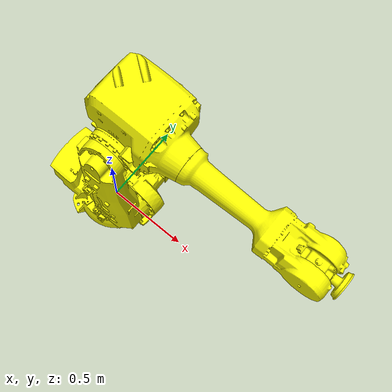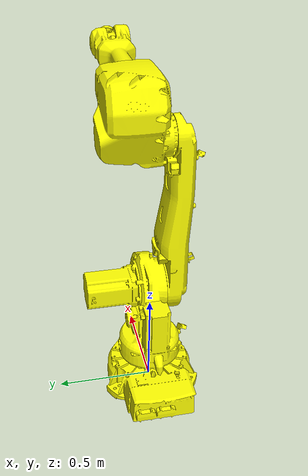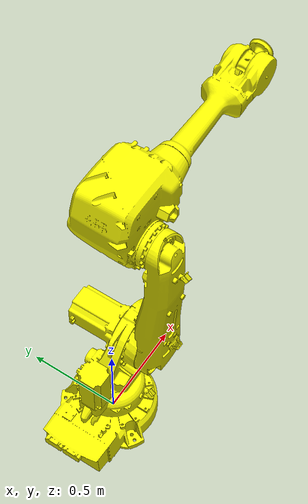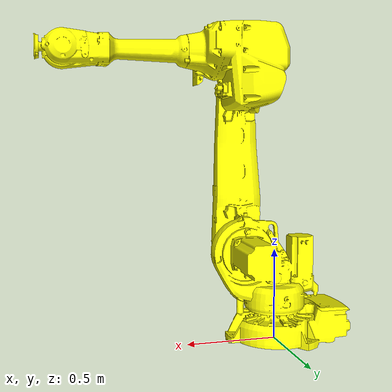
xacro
<?xml version="1.0"?>
<robot xmlns:xacro="http://www.ros.org/wiki/xacro"
       name="preview_irb4600_60_205">
  <xacro:arg name="tf_prefix" default=""/>

  <!-- Define world ONLY in preview/top-level -->
  <link name="world"/>

  <!-- Instantiate -->
  <xacro:include filename="$(find abb_irb4600_support)/urdf/irb4600_60_205_macro.urdf.xacro"/>
  <xacro:abb_irb4600_60_205 prefix="$(arg tf_prefix)"/>

  <!-- Attach to world -->
  <joint name="mount_to_world" type="fixed">
    <parent link="world"/>
    <child link="$(arg tf_prefix)base_link"/>
    <origin xyz="0 0 0" rpy="0 0 0"/>
  </joint>

</robot>

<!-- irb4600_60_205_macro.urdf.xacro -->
<robot xmlns:xacro="http://ros.org/wiki/xacro">
  <xacro:macro name="abb_irb4600_60_205"
    params="prefix:='' revolute_damping:=0 revolute_friction:=0 include_collision:=true">
    <!-- link list -->
    <link name="${prefix}base_link">
      <xacro:if value="${include_collision}">
        <collision name="collision">
          <geometry>
            <mesh filename="package://abb_irb4600_support/meshes/irb4600/collision/base_link.stl" />
          </geometry>
        </collision>
      </xacro:if>
      <visual name="visual">
        <geometry>
          <mesh filename="package://abb_irb4600_support/meshes/irb4600/visual_obj/base_link.obj" />
        </geometry>
        <material name="yellow">
          <color rgba="1 1 0 1" />
        </material>
      </visual>
      <!-- The following are estimates only, as computed using total robot mass of 445kg distributed
      according to link volumes. -->
      <inertial>
        <mass value="81.828765" />
        <inertia ixx="1.1415" ixy="0.0105902" ixz="0.156701"
          iyy="2.31965" iyz="0.00032"
          izz="3.13136" />
        <origin xyz="-0.0914 0.000381 0.08247" rpy="0 0 0" />
      </inertial>
    </link>
    <link name="${prefix}link_1">
      <xacro:if value="${include_collision}">
        <collision name="collision">
          <geometry>
            <mesh filename="package://abb_irb4600_support/meshes/irb4600/collision/link_1.stl" />
          </geometry>
        </collision>
      </xacro:if>
      <visual name="visual">
        <geometry>
          <mesh filename="package://abb_irb4600_support/meshes/irb4600/visual_obj/link_1.obj" />
        </geometry>
        <material name="yellow" />
      </visual>
      <!-- The following are estimates only, as computed using total robot mass of 445kg distributed
      according to link volumes. -->
      <inertial>
        <mass value="114.303365" />
        <inertia ixx="2.99197" ixy="-0.262121" ixz="0.0804318"
          iyy="3.89993" iyz="-0.279368"
          izz="3.12186" />
        <origin xyz="0.076986 0.024762 -0.0947" rpy="0 0 0" />
      </inertial>
    </link>
    <link name="${prefix}link_2">
      <xacro:if value="${include_collision}">
        <collision name="collision">
          <geometry>
            <mesh filename="package://abb_irb4600_support/meshes/irb4600_60_205/collision/link_2.stl" />
          </geometry>
        </collision>
      </xacro:if>
      <visual name="visual">
        <geometry>
          <mesh filename="package://abb_irb4600_support/meshes/irb4600_60_205/visual_obj/link_2.obj" />
        </geometry>
        <material name="yellow" />
      </visual>
      <!-- The following are estimates only, as computed using total robot mass of 445kg distributed
      according to link volumes. -->
      <inertial>
        <mass value="75.83976" />
        <inertia ixx="5.85548" ixy="-0.00008" ixz="0.000798"
          iyy="6.06764" iyz="0.198884"
          izz="0.434182" />
        <origin xyz="0 -0.17055 0.396832" rpy="0 0 0" />
      </inertial>

    </link>
    <link name="${prefix}link_3">
      <xacro:if value="${include_collision}">
        <collision name="collision">
          <geometry>
            <mesh filename="package://abb_irb4600_support/meshes/irb4600_60_205/collision/link_3.stl" />
          </geometry>
        </collision>
      </xacro:if>
      <visual name="visual">
        <geometry>
          <mesh filename="package://abb_irb4600_support/meshes/irb4600_60_205/visual_obj/link_3.obj" />
        </geometry>
        <material name="yellow" />
      </visual>
      <!-- The following are estimates only, as computed using total robot mass of 445kg distributed
      according to link volumes. -->
      <inertial>
        <mass value="128.2082" />
        <inertia ixx="3.06222" ixy="0.199317" ixz="-0.309802"
          iyy="3.76188" iyz="0.0384368"
          izz="3.09117" />
        <origin xyz="0.040168 0.0493055 0.119626" rpy="0 0 0" />
      </inertial>

    </link>
    <link name="${prefix}link_4">
      <xacro:if value="${include_collision}">
        <collision name="collision">
          <geometry>
            <mesh filename="package://abb_irb4600_support/meshes/irb4600_60_205/collision/link_4.stl" />
          </geometry>
        </collision>
      </xacro:if>
      <visual name="visual">
        <geometry>
          <mesh filename="package://abb_irb4600_support/meshes/irb4600_60_205/visual_obj/link_4.obj" />
        </geometry>
        <material name="yellow" />
      </visual>
      <!-- The following are estimates only, as computed using total robot mass of 445kg distributed
      according to link volumes. -->
      <inertial>
        <mass value="30.039968" />
        <inertia ixx="0.143877" ixy="0.0152815" ixz="0.00617976"
          iyy="1.24666" iyz="0.00008"
          izz="1.29441" />
        <origin xyz="0.733488 -0.0019699 -0.002854" rpy="0 0 0" />
      </inertial>

    </link>
    <link name="${prefix}link_5">
      <xacro:if value="${include_collision}">
        <collision name="collision">
          <geometry>
            <mesh filename="package://abb_irb4600_support/meshes/irb4600_60_205/collision/link_5.stl" />
          </geometry>
        </collision>
      </xacro:if>
      <visual name="visual">
        <geometry>
          <mesh filename="package://abb_irb4600_support/meshes/irb4600_60_205/visual_obj/link_5.obj" />
        </geometry>
        <material name="yellow" />
      </visual>
      <!-- The following are estimates only, as computed using total robot mass of 445kg distributed
      according to link volumes. -->
      <inertial>
        <mass value="4.06033" />
        <inertia ixx="0.00817067" ixy="0.0" ixz="-0.00005"
          iyy="0.00847828" iyz="0.00001"
          izz="0.009" />
        <origin xyz="-0.001046 -0.003447 0.000404" rpy="0 0 0" />
      </inertial>

    </link>
    <link name="${prefix}link_6">
      <xacro:if value="${include_collision}">
        <collision name="collision">
          <geometry>
            <mesh filename="package://abb_irb4600_support/meshes/irb4600_60_205/collision/link_6.stl" />
          </geometry>
        </collision>
      </xacro:if>
      <visual name="visual">
        <geometry>
          <mesh filename="package://abb_irb4600_support/meshes/irb4600_60_205/visual_obj/link_6.obj" />
        </geometry>
        <material name="yellow" />
      </visual>
      <!-- The following are estimates only, as computed using total robot mass of 445kg distributed
      according to link volumes. -->
      <inertial>
        <mass value="0.71955" />
        <inertia ixx="0.00101673" ixy="0.0" ixz="0.0"
          iyy="0.000771006" iyz="0.0"
          izz="0.000776247" />
        <origin xyz="-0.0216378 -0.000286 0.000136" rpy="0 0 0" />
      </inertial>
    </link>
    <!-- end of link list -->

    <!-- joint list -->
    <joint type="revolute" name="${prefix}joint_1">
      <origin xyz="0 0 0.495" rpy="0 0 0" />
      <axis xyz="0 0 1" />
      <parent link="${prefix}base_link" />
      <child link="${prefix}link_1" />
      <limit effort="2000" lower="-3.141" upper="3.141" velocity="3.054" />
      <dynamics damping="${revolute_damping}" friction="${revolute_friction}" />
    </joint>
    <joint type="revolute" name="${prefix}joint_2">
      <origin xyz="0.175 0 0" rpy="0 0 0" />
      <axis xyz="0 1 0" />
      <parent link="${prefix}link_1" />
      <child link="${prefix}link_2" />
      <limit effort="5000" lower="-1.570" upper="2.617" velocity="3.054" />
      <dynamics damping="${revolute_damping}" friction="${revolute_friction}" />
    </joint>
    <joint type="revolute" name="${prefix}joint_3">
      <origin xyz="0 0 0.9" rpy="0 0 0" />
      <axis xyz="0 1 0" />
      <parent link="${prefix}link_2" />
      <child link="${prefix}link_3" />
      <limit effort="4000" lower="-3.141" upper="1.308" velocity="3.054" />
      <dynamics damping="${revolute_damping}" friction="${revolute_friction}" />
    </joint>
    <joint type="revolute" name="${prefix}joint_4">
      <origin xyz="0 0 0.175" rpy="0 0 0" />
      <axis xyz="1 0 0" />
      <parent link="${prefix}link_3" />
      <child link="${prefix}link_4" />
      <limit effort="1000" lower="-6.981" upper="6.981" velocity="4.363" />
      <dynamics damping="${revolute_damping}" friction="${revolute_friction}" />
    </joint>
    <joint type="revolute" name="${prefix}joint_5">
      <origin xyz="0.960 0 0 " rpy="0 0 0" />
      <axis xyz="0 1 0" />
      <parent link="${prefix}link_4" />
      <child link="${prefix}link_5" />
      <limit effort="500" lower="-2.181" upper="2.094" velocity="4.363" />
      <dynamics damping="${revolute_damping}" friction="${revolute_friction}" />
    </joint>
    <joint type="revolute" name="${prefix}joint_6">
      <origin xyz="0.135 0 0 " rpy="0 0 0" />
      <axis xyz="1 0 0" />
      <parent link="${prefix}link_5" />
      <child link="${prefix}link_6" />
      <limit effort="250" lower="-6.981" upper="6.981" velocity="6.283" />
      <dynamics damping="${revolute_damping}" friction="${revolute_friction}" />
    </joint>
    <!-- end of joint list -->

    <!-- ROS-Industrial 'base' frame: base_link to ABB World Coordinates transform -->
    <link name="${prefix}base" />
    <joint name="${prefix}base_link-base" type="fixed">
      <origin xyz="0 0 0" rpy="0 0 0" />
      <parent link="${prefix}base_link" />
      <child link="${prefix}base" />
    </joint>

    <!-- ROS-Industrial 'flange' frame: attachment point for EEF models -->
    <link name="${prefix}flange" />
    <joint type="fixed" name="${prefix}joint_6-flange">
      <origin xyz="0 0 0" rpy="0 0 0" />
      <parent link="${prefix}link_6" />
      <child link="${prefix}flange" />
    </joint>

    <!-- ROS-Industrial 'tool0' frame: all-zeros tool frame -->
    <link name="${prefix}tool0" />
    <joint name="${prefix}flange-tool0" type="fixed">
      <origin xyz="0 0 0" rpy="0 ${radians(90)} 0" />
      <parent link="${prefix}flange" />
      <child link="${prefix}tool0" />
    </joint>
  </xacro:macro>
</robot>
